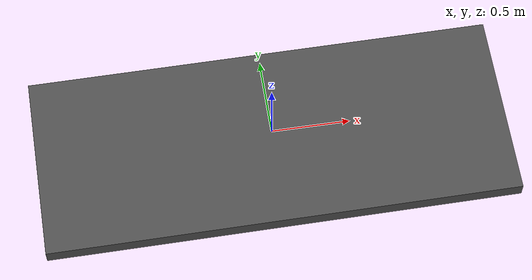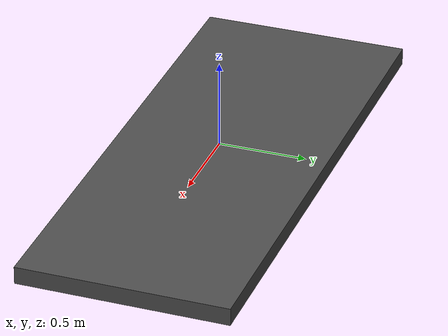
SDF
<?xml version='1.0'?>
<sdf version='1.6'>
  <model name='task4_road'>
<pose>0 0 -0.1 -0 0 0</pose>
    <link name='task4'>
      <collision name='task4_Collision'>
        <geometry>
          <box>
            <size>3 1.2 0.1</size>
          </box>
        </geometry>
        <pose frame=''>0 0 0 0 -0 0</pose>
      </collision>
      <visual name='task4_Visual'>
        <pose frame=''>0 0 0 0 -0 0</pose>
        <geometry>
          <box>
            <size>3 1.2 0.1</size>
          </box>
        </geometry>
        <material>
          <script>
            <uri>file://media/materials/scripts/gazebo.material</uri>
            <name>Gazebo/Road</name>
          </script>
          <ambient>1 1 1 1</ambient>
        </material>
        <meta>
          <layer>0</layer>
        </meta>
      </visual>
      <pose frame=''>0 0 0 0 -0 0</pose>
    </link>
    <static>1</static>
  </model>
</sdf>
